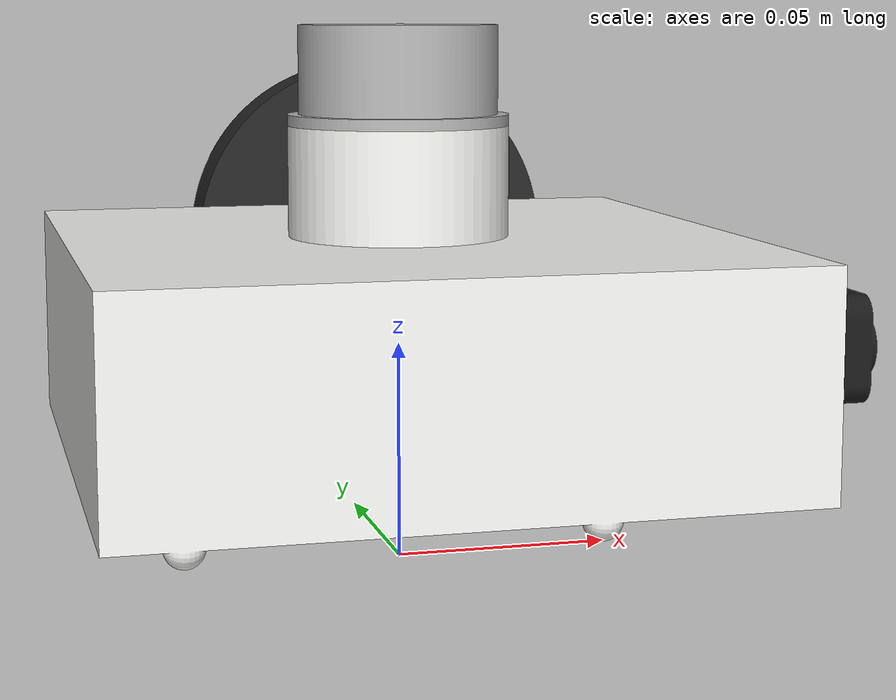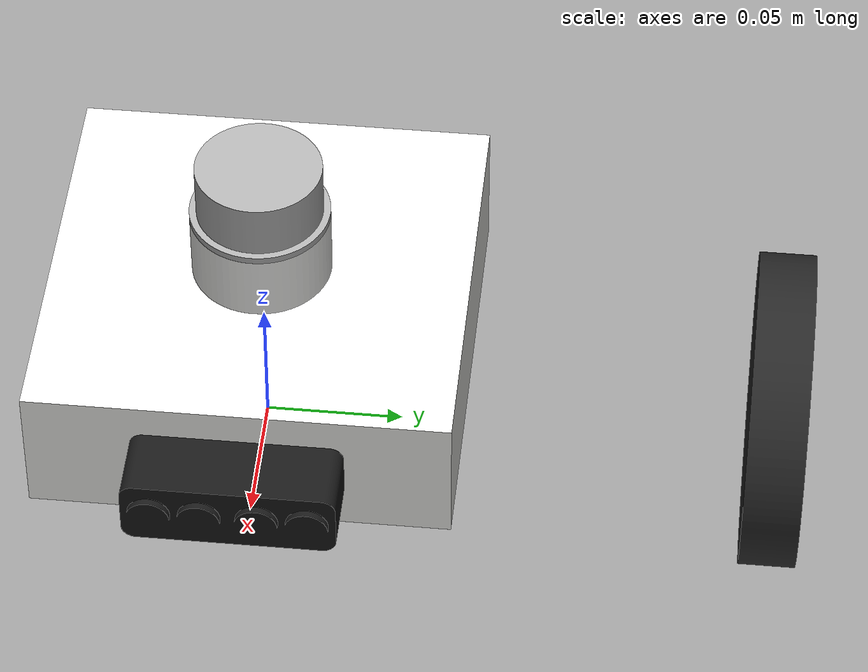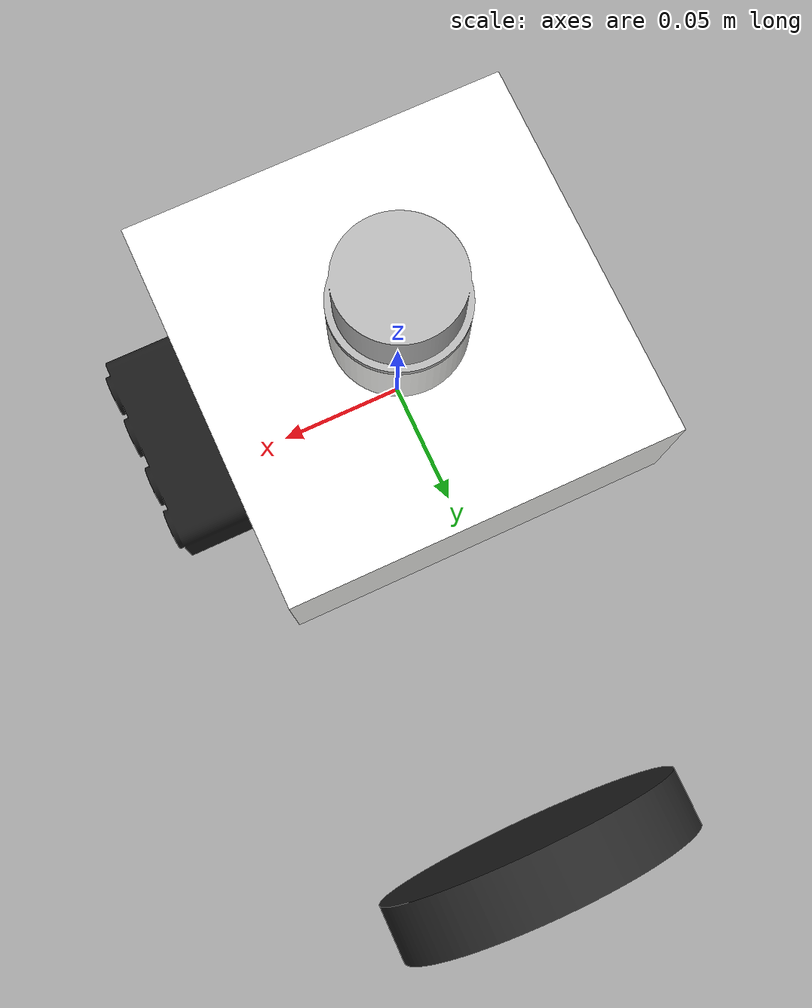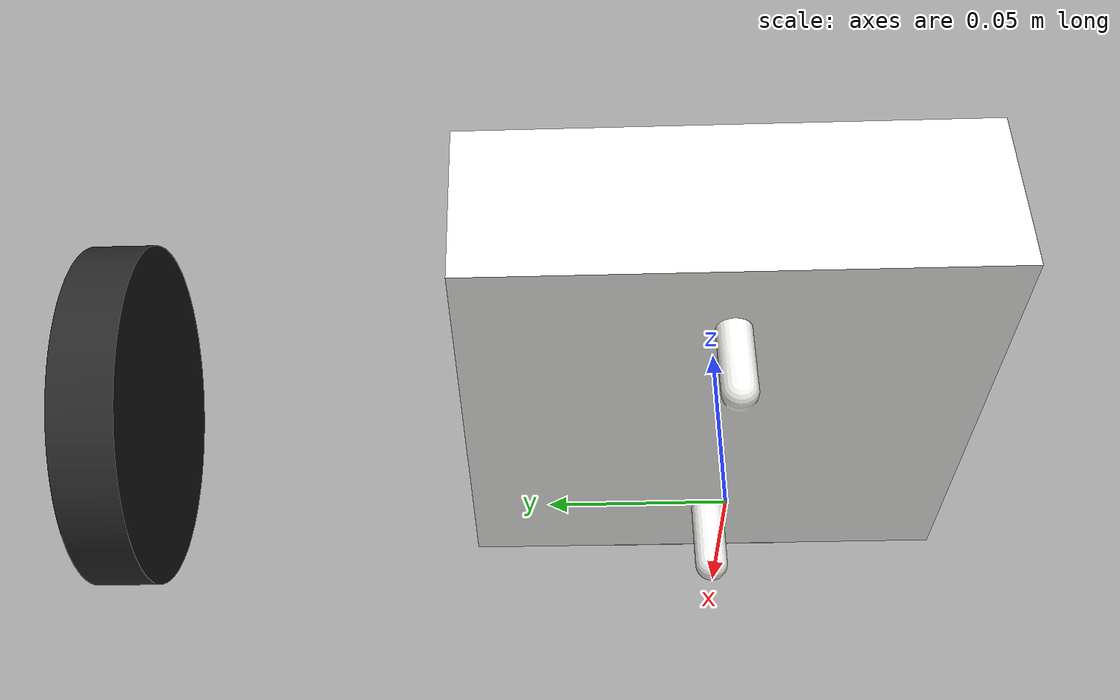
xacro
<?xml version="1.0" ?>
<robot name="wheely_2" xmlns:xacro="http://www.ros.org/wiki/xacro">

<xacro:include filename="$(find wheely_2_description)/urdf/materials.xacro" />
<xacro:include filename="$(find wheely_2_description)/urdf/wheely_2.trans" />
<xacro:include filename="$(find wheely_2_description)/urdf/wheely_2.gazebo" />
<link name="base_link">
  <inertial>
    <origin rpy="0 0 0" xyz="1.7143483936952969e-15 8.380279878224747e-16 0.05144875718705417"/>
    <mass value="1.6488536072981406"/>
    <inertia ixx="0.003396" ixy="0.0" ixz="0.0" iyy="0.003409" iyz="0.0" izz="0.005941"/>
  </inertial>
  <visual>
    <origin rpy="0 0 0" xyz="0 0 0"/>
    <geometry>
      <mesh filename="package://wheely_2_description/meshes/base_link.stl" scale="0.001 0.001 0.001"/>
    </geometry>
    <material name="plastic_glossy_white"/>
  </visual>
  <collision>
    <origin rpy="0 0 0" xyz="0 0 0"/>
    <geometry>
      <mesh filename="package://wheely_2_description/meshes/base_link.stl" scale="0.001 0.001 0.001"/>
    </geometry>
  </collision>
</link>

<link name="LIDAR_1">
  <inertial>
    <origin rpy="0 0 0" xyz="-3.226802273235357e-17 -2.1315391519574705e-17 0.010995989304812812"/>
    <mass value="0.046998226097703315"/>
    <inertia ixx="8e-06" ixy="-0.0" ixz="0.0" iyy="8e-06" iyz="0.0" izz="1.2e-05"/>
  </inertial>
  <visual>
    <origin rpy="0 0 0" xyz="-0.0 0.0 -0.1"/>
    <geometry>
      <mesh filename="package://wheely_2_description/meshes/LIDAR_1.stl" scale="0.001 0.001 0.001"/>
    </geometry>
    <material name="plastic_glossy_grey"/>
  </visual>
  <collision>
    <origin rpy="0 0 0" xyz="-0.0 0.0 -0.1"/>
    <geometry>
      <mesh filename="package://wheely_2_description/meshes/LIDAR_1.stl" scale="0.001 0.001 0.001"/>
    </geometry>
  </collision>
</link>

<link name="right_wheel_1">
  <inertial>
    <origin rpy="0 0 0" xyz="1.5103871126513457e-18 -0.01250000000000008 1.3877787807814457e-17"/>
    <mass value="0.18260507298990675"/>
    <inertia ixx="0.000124" ixy="0.0" ixz="-0.0" iyy="0.000228" iyz="-0.0" izz="0.000124"/>
  </inertial>
  <visual>
    <origin rpy="0 0 0" xyz="-0.0 0.075 -0.05"/>
    <geometry>
      <mesh filename="package://wheely_2_description/meshes/right_wheel_1.stl" scale="0.001 0.001 0.001"/>
    </geometry>
    <material name="rubber_soft"/>
  </visual>
  <collision>
    <origin rpy="0 0 0" xyz="-0.0 0.075 -0.05"/>
    <geometry>
      <mesh filename="package://wheely_2_description/meshes/right_wheel_1.stl" scale="0.001 0.001 0.001"/>
    </geometry>
  </collision>
</link>

<link name="left_wheel_1">
  <inertial>
    <origin rpy="0 0 0" xyz="-1.3090433312895435e-17 0.012499999999999983 3.469446951953614e-17"/>
    <mass value="0.18260507298990675"/>
    <inertia ixx="0.000124" ixy="0.0" ixz="-0.0" iyy="0.000228" iyz="0.0" izz="0.000124"/>
  </inertial>
  <visual>
    <origin rpy="0 0 0" xyz="0.0 -0.075 -0.05"/>
    <geometry>
      <mesh filename="package://wheely_2_description/meshes/left_wheel_1.stl" scale="0.001 0.001 0.001"/>
    </geometry>
    <material name="rubber_soft"/>
  </visual>
  <collision>
    <origin rpy="0 0 0" xyz="0.0 -0.075 -0.05"/>
    <geometry>
      <mesh filename="package://wheely_2_description/meshes/left_wheel_1.stl" scale="0.001 0.001 0.001"/>
    </geometry>
  </collision>
</link>

<link name="depth_cam_1">
  <inertial>
    <origin rpy="0 0 0" xyz="0.013005102001252558 4.2157251346061003e-17 -2.8796409701215e-14"/>
    <mass value="0.07874893476903781"/>
    <inertia ixx="4e-05" ixy="0.0" ixz="0.0" iyy="8e-06" iyz="0.0" izz="4.1e-05"/>
  </inertial>
  <visual>
    <origin rpy="0 0 0" xyz="-0.075 -0.0 -0.05"/>
    <geometry>
      <mesh filename="package://wheely_2_description/meshes/depth_cam_1.stl" scale="0.001 0.001 0.001"/>
    </geometry>
    <material name="plastic_matte_black"/>
  </visual>
  <collision>
    <origin rpy="0 0 0" xyz="-0.075 -0.0 -0.05"/>
    <geometry>
      <mesh filename="package://wheely_2_description/meshes/depth_cam_1.stl" scale="0.001 0.001 0.001"/>
    </geometry>
  </collision>
</link>

<joint name="lidar_rot" type="continuous">
  <origin rpy="0 0 0" xyz="0.0 0.0 0.1"/>
  <parent link="base_link"/>
  <child link="LIDAR_1"/>
  <axis xyz="0.0 -0.0 1.0"/>
</joint>

<joint name="right_drive" type="continuous">
  <origin rpy="0 0 0" xyz="0.0 -0.075 0.05"/>
  <parent link="base_link"/>
  <child link="right_wheel_1"/>
  <axis xyz="0.0 1.0 -0.0"/>
</joint>

<joint name="left_drive" type="continuous">
  <origin rpy="0 0 0" xyz="0.0 0.075 0.05"/>
  <parent link="base_link"/>
  <child link="left_wheel_1"/>
  <axis xyz="-0.0 1.0 0.0"/>
</joint>

<joint name="d_cam" type="fixed">
  <origin rpy="0 0 0" xyz="0.075 0.0 0.05"/>
  <parent link="base_link"/>
  <child link="depth_cam_1"/>
</joint>

</robot>

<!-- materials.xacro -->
<robot name="wheely_2" xmlns:xacro="http://www.ros.org/wiki/xacro" >

<material name="silver_default">
  <color rgba="0.700 0.700 0.700 1.000"/>
</material>
<material name="plastic_glossy_white">
  <color rgba="0.9647058823529412 0.9647058823529412 0.9529411764705882 1.0"/>
</material>
<material name="rubber_soft">
  <color rgba="0.15294117647058825 0.15294117647058825 0.15294117647058825 1.0"/>
</material>
<material name="plastic_glossy_grey">
  <color rgba="0.7019607843137254 0.7019607843137254 0.7019607843137254 1.0"/>
</material>
<material name="plastic_matte_black">
  <color rgba="0.09803921568627451 0.09803921568627451 0.09803921568627451 1.0"/>
</material>

</robot>
